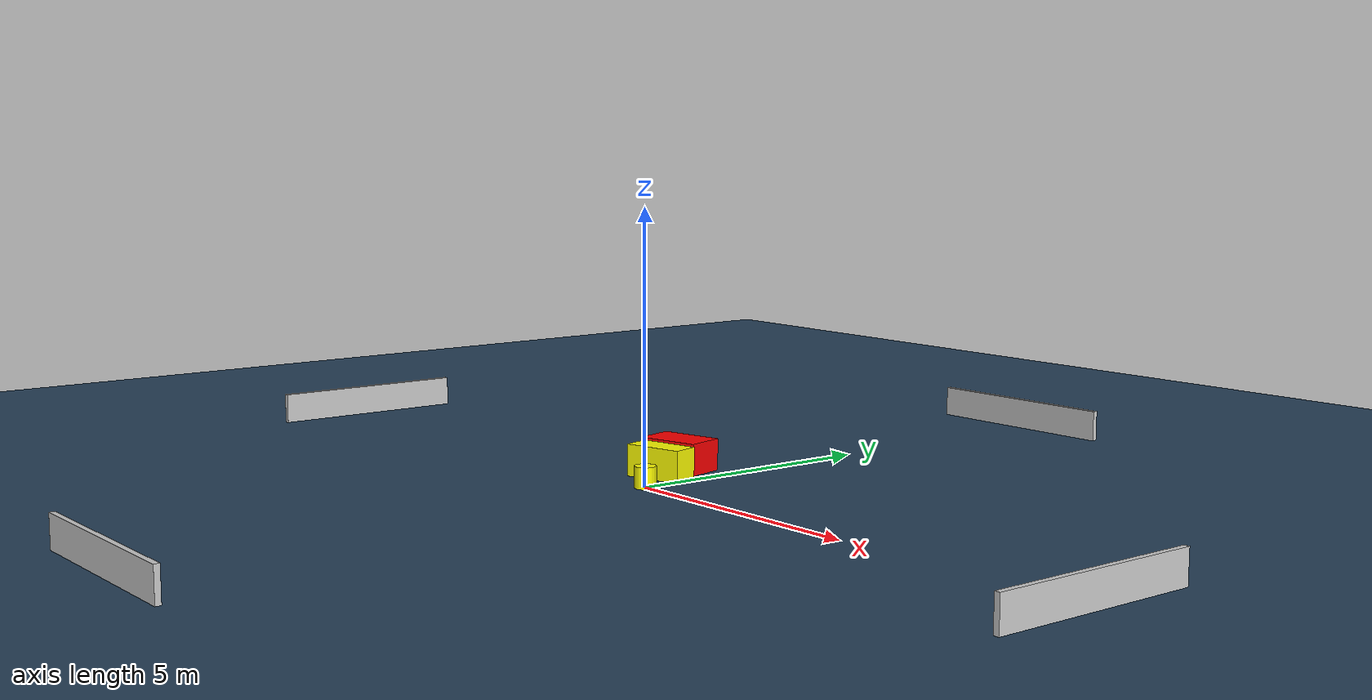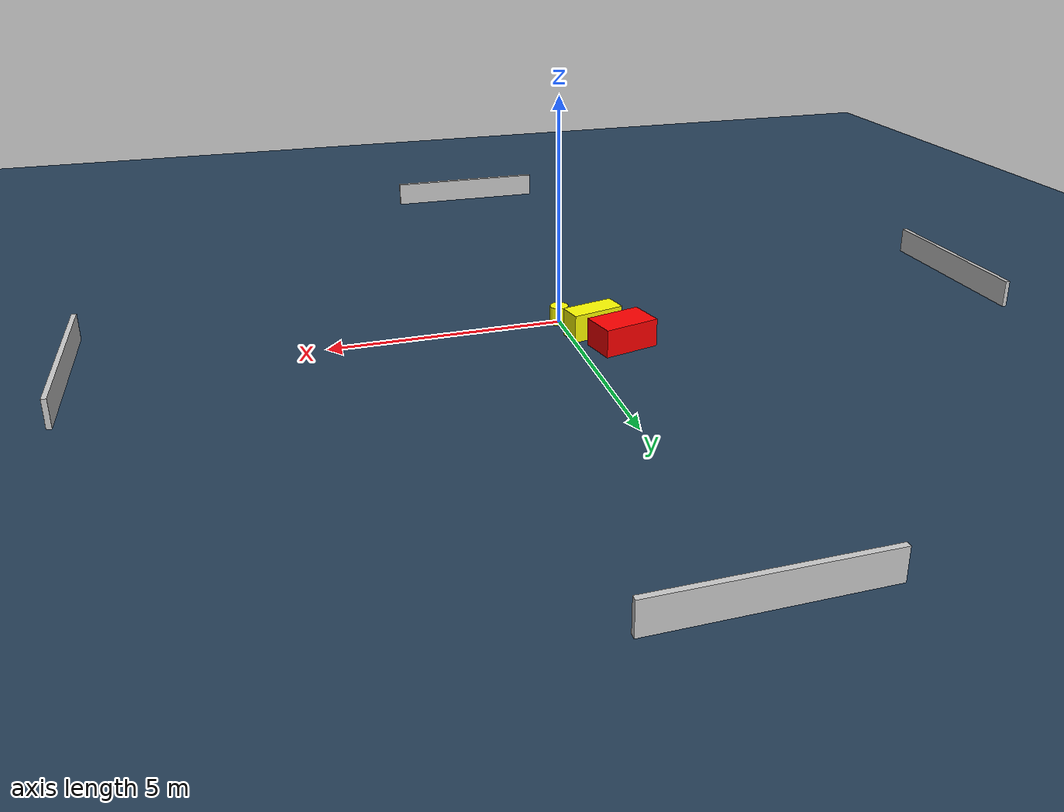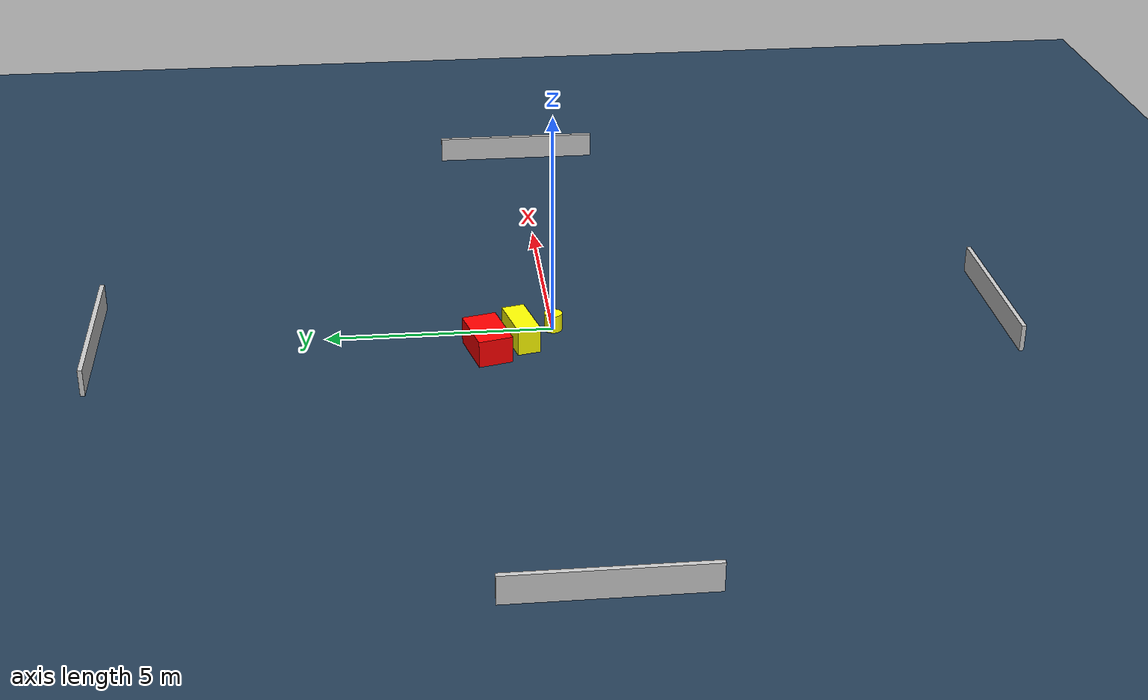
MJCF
<?xml version="1.0" ?>
<mujoco model="generated_environment">
  <option timestep="0.01" integrator="RK4" cone="elliptic"/>
  <default>
    <geom density="1"/>
  </default>
  <asset>
    <texture builtin="gradient" height="3072" name="skybox" rgb1="0.3 0.5 0.7" rgb2="0 0 0" type="skybox" width="512"/>
    <texture builtin="checker" height="300" name="groundplane" rgb1="0.2 0.3 0.4" rgb2="0.1 0.2 0.3" type="2d" width="300"/>
    <material name="groundplane" reflectance="0.2" texrepeat="5 5" texture="groundplane"/>
  </asset>
  <worldbody>
    <light dir="0 0 -1" directional="true" pos="0 0 1.5"/>
    <geom condim="3" friction="0.5 0.005 0.001" material="groundplane" name="floor" pos="0 0 0" size="0 0 0.05" type="plane"/>
    <body name="walls">
      <geom name="wall_1" condim="4" pos="-10.0 0.0 0.3" rgba="0.800000011920929 0.800000011920929 0.800000011920929 1.0" size="0.05 2.0 0.3" type="box"/>
      <geom name="wall_2" condim="4" pos="10.0 0.0 0.3" rgba="0.800000011920929 0.800000011920929 0.800000011920929 1.0" size="0.05 2.0 0.3" type="box"/>
      <geom name="wall_3" condim="4" pos="0.0 -10.0 0.3" rgba="0.800000011920929 0.800000011920929 0.800000011920929 1.0" size="2.0 0.05 0.3" type="box"/>
      <geom name="wall_4" condim="4" pos="0.0 10.0 0.3" rgba="0.800000011920929 0.800000011920929 0.800000011920929 1.0" size="2.0 0.05 0.3" type="box"/>
    </body>
    <body name="robot">
      <joint name="joint_x" type="slide" pos="0 0 0" axis="1 0 0"/>
      <joint name="joint_y" type="slide" pos="0 0 0" axis="0 1 0"/>
      <geom name="robot" type="cylinder" pos="0.0 0.0 0.2" size="0.2 0.2 0.0" mass="5.0" friction="1.0 0.005 0.0001" condim="4" rgba="1.0 1.0 0.0 1.0"/>
    </body>
    <body name="obstacle_1_movable">
      <geom name="obstacle_1_movable" condim="4" pos="-0.5206815398435505 0.7597231380748954 0.3" euler="0 0 283.2726380323423" friction="0.0 0.005 0.001" rgba="1.0 1.0 0.0 1.0" size="0.25299340412816684 0.5756352223811452 0.3" type="box" mass="0.1"/>
      <joint type="free"/>
    </body>
    <body name="obstacle_2_static">
      <geom name="obstacle_2_static" condim="4" pos="-0.9147845097443482 1.5188880084801966 0.3" euler="0 0 193.8613651057908" friction="0.0 0.005 0.001" rgba="1.0 0.0 0.0 1.0" size="0.6091107742057813 0.3790996828529557 0.3" type="box"/>
    </body>
  </worldbody>
  <actuator>
    <motor name="actuator_x" joint="joint_x" gear="1" ctrlrange="-1 1"/>
    <motor name="actuator_y" joint="joint_y" gear="1" ctrlrange="-1 1"/>
  </actuator>
</mujoco>
